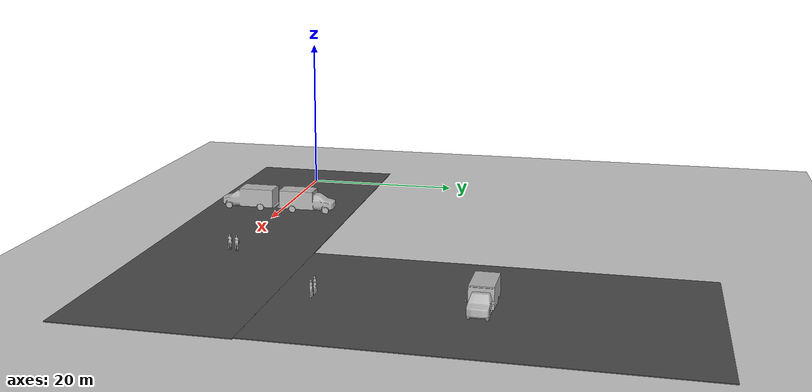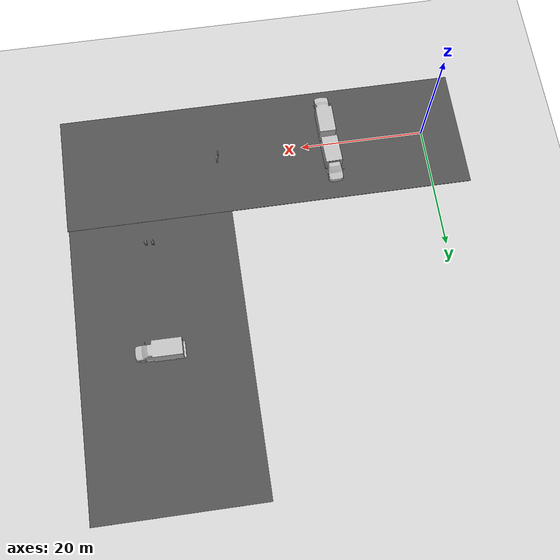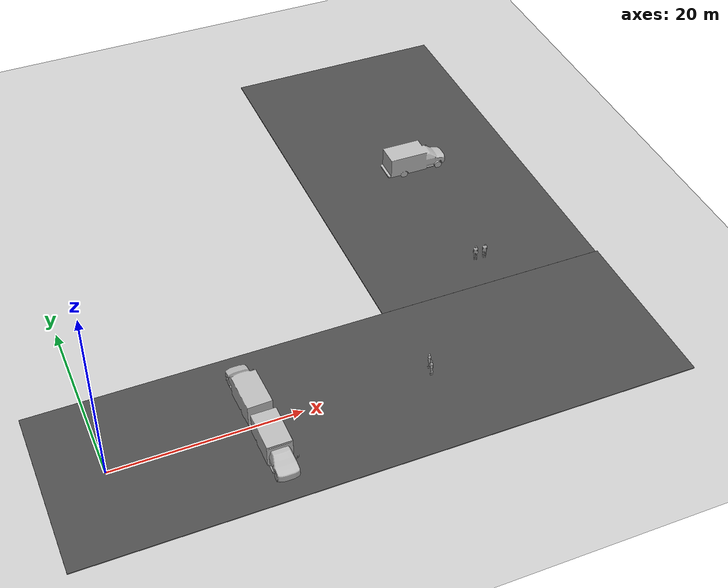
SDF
<sdf version="1.6">
 <world name="default">
  <light name="sun" type="directional">
   <pose>0 0 10 0 -0 0</pose>
   <diffuse>0.8 0.8 0.8 1</diffuse>
   <specular>0.2 0.2 0.2 1</specular>
   <attenuation>
    <range>1000</range>
    <constant>0.9</constant>
    <linear>0.01</linear>
    <quadratic>0.001</quadratic>
   </attenuation>
   <direction>-0.5 0.1 -0.9</direction>
  </light>
  <model name="ground_plane">
   <static>1</static>
   <link name="link">
    <collision name="collision">
     <geometry><plane><normal>0 0 1</normal><size>100 100</size></plane></geometry>
     <surface>
      <contact><collide_bitmask>65535</collide_bitmask></contact>
      <friction><ode><mu>100</mu><mu2>50</mu2></ode></friction>
     </surface>
    </collision>
    <visual name="visual">
     <cast_shadows>0</cast_shadows>
     <geometry><plane><normal>0 0 1</normal><size>100 100</size></plane></geometry>
     <material>
      <script><uri>file://media/materials/scripts/gazebo.material</uri><name>Gazebo/Grey</name></script>
     </material>
    </visual>
   </link>
  </model>
  <model name="asphalt_plane">
   <pose>26.3672 -0.125461 0 0 -0 0</pose>
   <static>1</static>
   <link name="link">
    <collision name="collision"><geometry><box><size>65.1124 19.6665 0.1</size></box></geometry></collision>
    <visual name="visual">
     <cast_shadows>0</cast_shadows>
     <geometry><box><size>65.1124 19.6665 0.1</size></box></geometry>
     <material>
      <script>
       <uri>model://asphalt_plane/materials/scripts</uri>
       <uri>model://asphalt_plane/materials/textures</uri>
       <name>vrc/asphalt</name>
      </script>
     </material>
    </visual>
   </link>
  </model>
  <physics name="default_physics" default="0" type="ode">
   <ode>
    <solver>
     <type>quick</type>
     <iters>10</iters>
     <sor>1.3</sor>
     <use_dynamic_moi_rescaling>0</use_dynamic_moi_rescaling>
    </solver>
    <constraints>
     <cfm>0</cfm>
     <erp>0.2</erp>
     <contact_max_correcting_vel>100</contact_max_correcting_vel>
     <contact_surface_layer>0.001</contact_surface_layer>
    </constraints>
   </ode>
   <max_step_size>0.004</max_step_size>
   <real_time_factor>1</real_time_factor>
   <real_time_update_rate>250</real_time_update_rate>
  </physics>
  <gravity>0 0 -9.8066</gravity>
  <magnetic_field>6e-06 2.3e-05 -4.2e-05</magnetic_field>
  <atmosphere type="adiabatic"/>
  <scene><ambient>0.4 0.4 0.4 1</ambient><background>0.7 0.7 0.7 1</background><shadows>1</shadows></scene>
  <spherical_coordinates>
   <surface_model>EARTH_WGS84</surface_model>
   <latitude_deg>0</latitude_deg>
   <longitude_deg>0</longitude_deg>
   <elevation>0</elevation>
   <heading_deg>0</heading_deg>
  </spherical_coordinates>
  <model name="ambulance">
   <static>1</static>
   <link name="link">
    <collision name="collision">
     <geometry>
      <mesh><scale>0.0254 0.0254 0.0254</scale><uri>model://ambulance/meshes/ambulance.obj</uri></mesh>
     </geometry>
    </collision>
    <visual name="visual">
     <geometry>
      <mesh><scale>0.0254 0.0254 0.0254</scale><uri>model://ambulance/meshes/ambulance.obj</uri></mesh>
     </geometry>
    </visual>
   </link>
   <pose>15.5086 3.33406 0 0 0 -3.11175</pose>
  </model>
  <model name="asphalt_plane_clone">
   <static>1</static>
   <link name="link">
    <collision name="collision"><geometry><box><size>25.9792 45.7315 0.1</size></box></geometry></collision>
    <visual name="visual">
     <cast_shadows>0</cast_shadows>
     <geometry><box><size>25.9792 45.7315 0.1</size></box></geometry>
     <material>
      <script>
       <uri>model://asphalt_plane/materials/scripts</uri>
       <uri>model://asphalt_plane/materials/textures</uri>
       <name>vrc/asphalt</name>
      </script>
     </material>
    </visual>
   </link>
   <pose>45.7176 32.5781 0 0 -0 0</pose>
  </model>
  <model name="ambulance_clone">
   <static>1</static>
   <link name="link">
    <collision name="collision">
     <geometry>
      <mesh><scale>0.0254 0.0254 0.0254</scale><uri>model://ambulance/meshes/ambulance.obj</uri></mesh>
     </geometry>
    </collision>
    <visual name="visual">
     <geometry>
      <mesh><scale>0.0254 0.0254 0.0254</scale><uri>model://ambulance/meshes/ambulance.obj</uri></mesh>
     </geometry>
    </visual>
   </link>
   <pose>15.6099 -4.29131 0 0 -0 0</pose>
  </model>
  <model name="person_standing_clone_1">
   <link name="link">
    <inertial>
     <pose>0 -0.1 0.95 0 -0 0</pose>
     <mass>80</mass>
     <inertia><ixx>24.88</ixx><ixy>0</ixy><ixz>0</ixz><iyy>25.73</iyy><iyz>0</iyz><izz>2.48</izz></inertia>
    </inertial>
    <collision name="bottom">
     <pose>0 -0.1 0.01 0 -0 0</pose>
     <geometry><box><size>0.5 0.35 0.04</size></box></geometry>
    </collision>
    <collision name="person">
     <pose>0 0 0.02 0.04 -0 0</pose>
     <geometry><mesh><uri>model://person_standing/meshes/standing.dae</uri></mesh></geometry>
    </collision>
    <visual name="visual">
     <pose>0 0 0.02 0.04 -0 0</pose>
     <geometry><mesh><uri>model://person_standing/meshes/standing.dae</uri></mesh></geometry>
    </visual>
   </link>
   <pose>34.0731 0.603414 0.049989 -1e-05 2.4e-05 -1.66219</pose>
  </model>
  <model name="person_standing_clone_2">
   <link name="link">
    <inertial>
     <pose>0 -0.1 0.95 0 -0 0</pose>
     <mass>80</mass>
     <inertia><ixx>24.88</ixx><ixy>0</ixy><ixz>0</ixz><iyy>25.73</iyy><iyz>0</iyz><izz>2.48</izz></inertia>
    </inertial>
    <collision name="bottom">
     <pose>0 -0.1 0.01 0 -0 0</pose>
     <geometry><box><size>1.5 1.05 0.06</size></box></geometry>
    </collision>
    <collision name="person">
     <pose>0 0 0.02 0.04 -0 0</pose>
     <geometry><mesh><uri>model://person_standing/meshes/standing.dae</uri></mesh></geometry>
    </collision>
    <visual name="visual">
     <pose>0 0 0.02 0.04 -0 0</pose>
     <geometry><mesh><uri>model://person_standing/meshes/standing.dae</uri></mesh></geometry>
    </visual>
   </link>
   <pose>33.8645 -0.332625 0.050004 1e-06 -1.7e-05 -1.65658</pose>
  </model>
  <model name="person_standing_clone_0_clone">
   <link name="link">
    <inertial>
     <pose>0 -0.1 0.95 0 -0 0</pose>
     <mass>80</mass>
     <inertia><ixx>24.88</ixx><ixy>0</ixy><ixz>0</ixz><iyy>25.73</iyy><iyz>0</iyz><izz>2.48</izz></inertia>
    </inertial>
    <collision name="bottom">
     <pose>0 -0.1 0.01 0 -0 0</pose>
     <geometry><box><size>0.5 0.35 0.04</size></box></geometry>
    </collision>
    <collision name="person">
     <pose>0 0 0.02 0.04 -0 0</pose>
     <geometry><mesh><uri>model://person_standing/meshes/standing.dae</uri></mesh></geometry>
    </collision>
    <visual name="visual">
     <pose>0 0 0.02 0.04 -0 0</pose>
     <geometry><mesh><uri>model://person_standing/meshes/standing.dae</uri></mesh></geometry>
    </visual>
   </link>
   <pose>46.8164 13.7694 0.049998 5e-06 -1.3e-05 -0.20119</pose>
  </model>
  <model name="ambulance_clone_1_clone">
   <static>1</static>
   <link name="link">
    <collision name="collision">
     <geometry>
      <mesh><scale>0.0254 0.0254 0.0254</scale><uri>model://ambulance/meshes/ambulance.obj</uri></mesh>
     </geometry>
    </collision>
    <visual name="visual">
     <geometry>
      <mesh><scale>0.0254 0.0254 0.0254</scale><uri>model://ambulance/meshes/ambulance.obj</uri></mesh>
     </geometry>
    </visual>
   </link>
   <pose>46.1731 31.5475 0 0 -0 1.5636</pose>
  </model>
  <model name="person_standing_clone_0_clone_clone_clone_1">
   <link name="link">
    <inertial>
     <pose>0 -0.1 0.95 0 -0 0</pose>
     <mass>80</mass>
     <inertia><ixx>24.88</ixx><ixy>0</ixy><ixz>0</ixz><iyy>25.73</iyy><iyz>0</iyz><izz>2.48</izz></inertia>
    </inertial>
    <collision name="bottom">
     <pose>0 -0.1 0.01 0 -0 0</pose>
     <geometry><box><size>0.5 0.35 0.04</size></box></geometry>
    </collision>
    <collision name="person">
     <pose>0 0 0.02 0.04 -0 0</pose>
     <geometry><mesh><uri>model://person_standing/meshes/standing.dae</uri></mesh></geometry>
    </collision>
    <visual name="visual">
     <pose>0 0 0.02 0.04 -0 0</pose>
     <geometry><mesh><uri>model://person_standing/meshes/standing.dae</uri></mesh></geometry>
    </visual>
   </link>
   <pose>45.7369 13.8581 0.050002 1e-06 -9e-06 -0.194892</pose>
  </model>
 </world>
</sdf>
